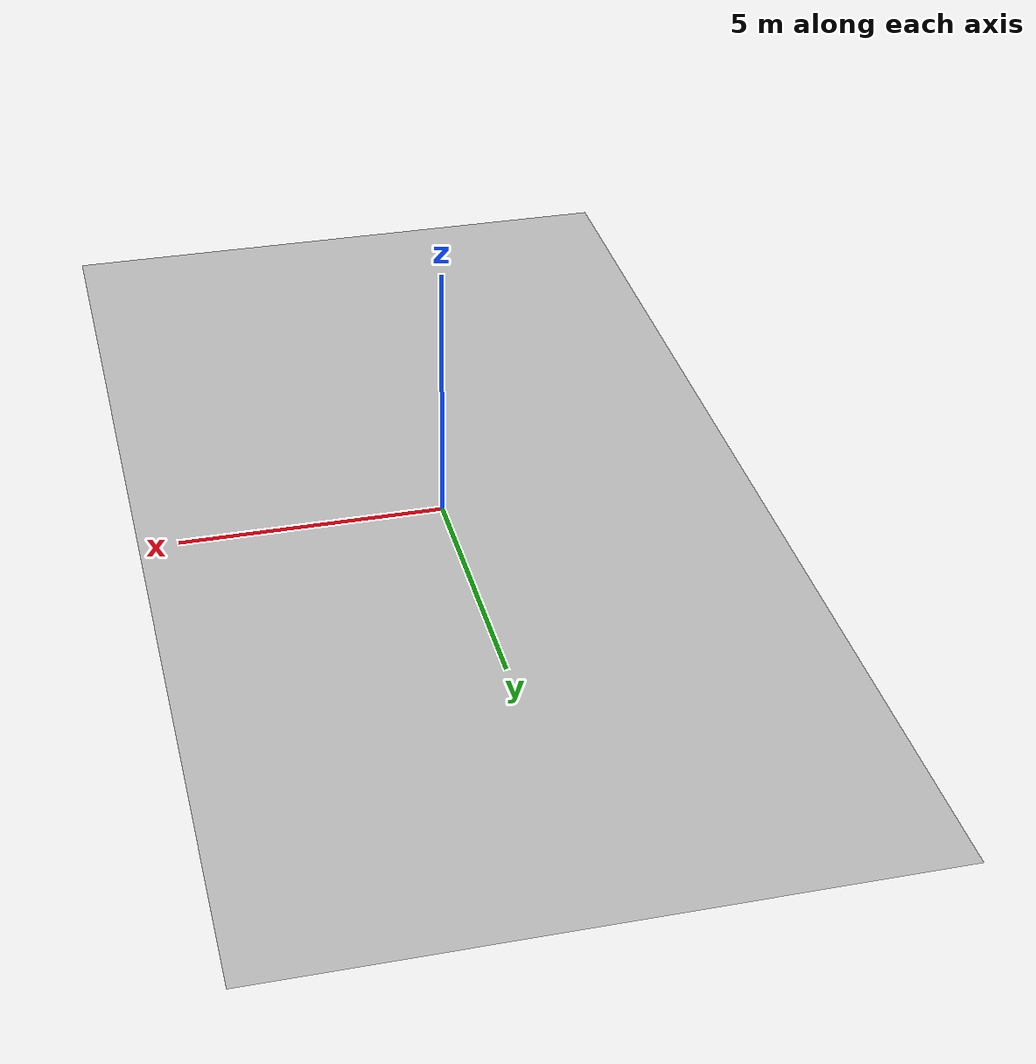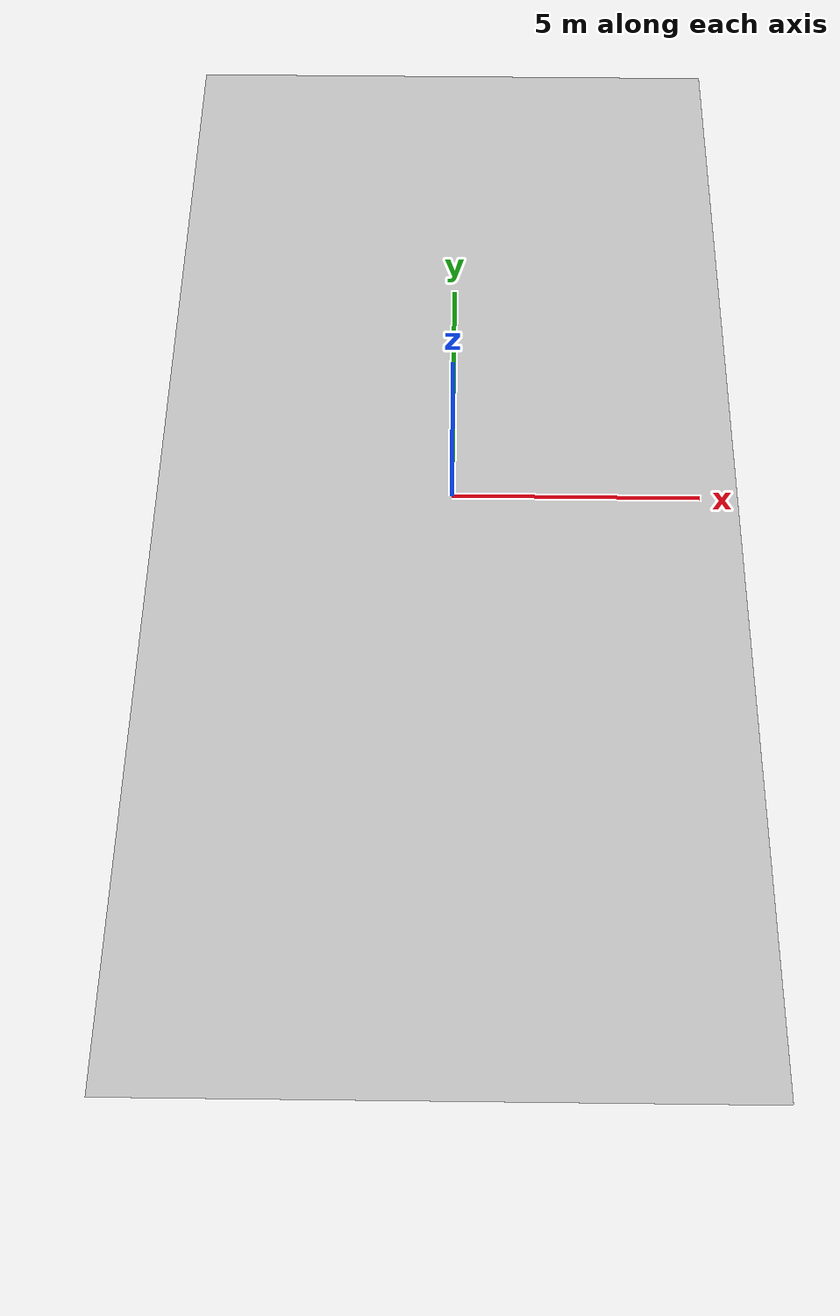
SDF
<?xml version='1.0'?>
<sdf version='1.6'>
  <model name='perception_floor1'>
    <link name='link_1'>
         <visual name='visual'>
        <pose frame=''>0 0 0 0 -0 0</pose>
        <geometry>
          <mesh>
            <uri>model://perception_floor1/meshes/perception_floor.dae</uri>
            <scale>1.0 1.0 1.0</scale>
          </mesh>
        </geometry>
        <cast_shadows>0</cast_shadows>
        <transparency>0</transparency>
      </visual>

    </link>

    <static>1</static>
    <allow_auto_disable>1</allow_auto_disable>
  </model>
</sdf>
